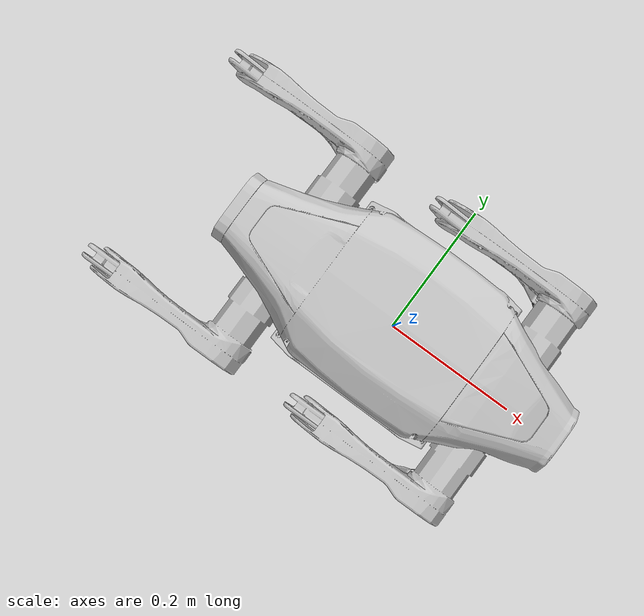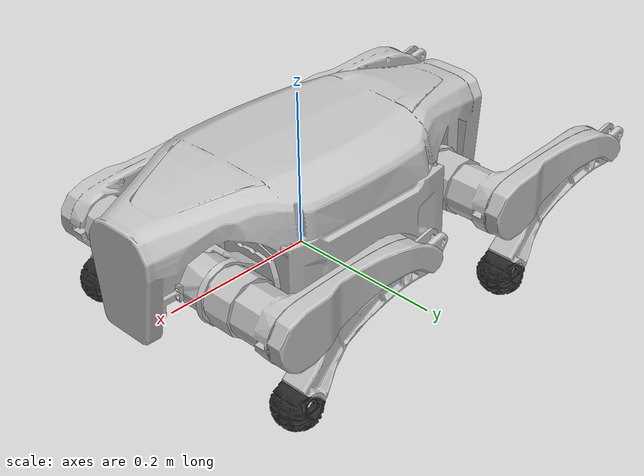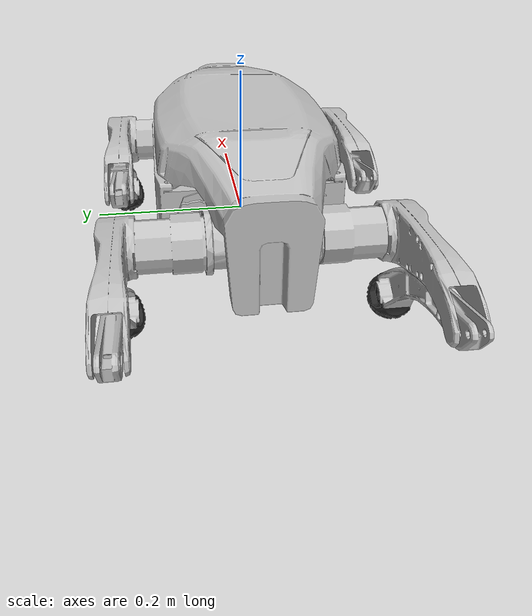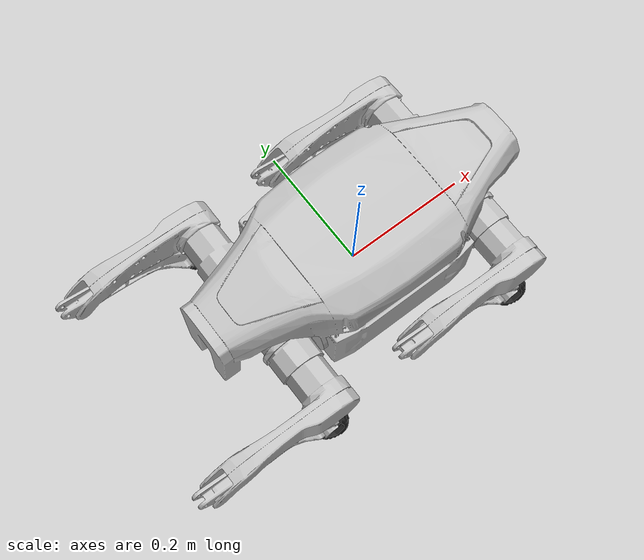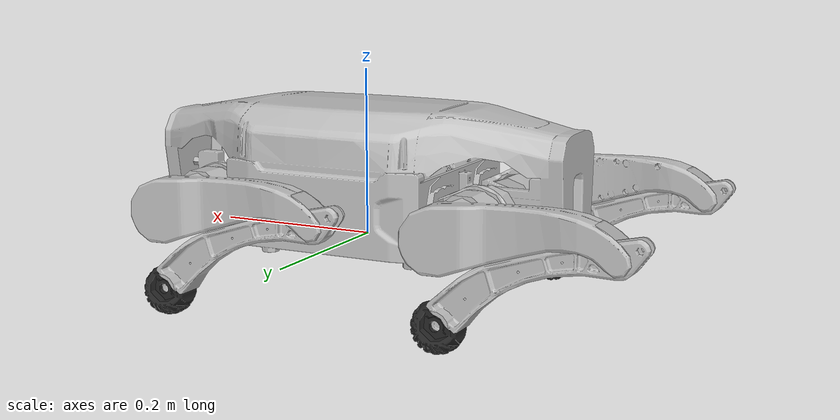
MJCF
<mujoco model='XtellarRobotics/ToGo_LFs_v0p1_prototype'>
    <compiler meshdir='../meshes' />

    <default>
        <default class="vis">
            <geom
                type="mesh" rgba="0.7529411764705882 0.7529411764705882 0.7529411764705882 1.0"
                group="1"
                contype="0" conaffinity="0" density="0"
            />
        </default>
        <default class="vis_rubber">
            <geom
                type="mesh" rgba="0.149 0.149 0.149 1.0"
                group="1"
                contype="0" conaffinity="0" density="0"
            />
        </default>
        <default class="col">
            <geom
                type="mesh" rgba="0.7529411764705882 0.7529411764705882 0.7529411764705882 1.0"
                group="3"
                contype="1" conaffinity="1" density="0"
                solref="0.005 1" solimp="0.95 0.99 0.001 0.5 2"
            />
        </default>
        <default class="col_rubber">
            <geom
                type="mesh" rgba="0.149 0.149 0.149 1.0"
                group="3"
                contype="1" conaffinity="1" density="0"
                solref="0.005 1" solimp="0.95 0.99 0.001 0.5 2"
                condim="6" friction="1.5 0.02 0.001"
            />
        </default>
    </default>

    <asset>
        <mesh name='vis_m0_torso'   file='visual/m0_torso.stl'      scale='0.001 0.001 0.001' />
        <!-- front left leg -->
        <mesh name='vis_mfl1_hipr'  file='visual/mfl1_hipr.stl'     scale='0.001 0.001 0.001' />
        <mesh name='vis_mfl2_hipp'  file='visual/mfl2_hipp.stl'     scale='0.001 0.001 0.001' />
        <mesh name='vis_mfl3_knee'  file='visual/mfl3_knee.stl'     scale='0.001 0.001 0.001' />
        <mesh name='vis_mfl4_foot'  file='visual/mfl4_foot.stl'     scale='0.001 0.001 0.001' />
        <!-- front right leg -->
        <mesh name='vis_mfr1_hipr'  file='visual/mfr1_hipr.stl'     scale='0.001 0.001 0.001' />
        <mesh name='vis_mfr2_hipp'  file='visual/mfr2_hipp.stl'     scale='0.001 0.001 0.001' />
        <mesh name='vis_mfr3_knee'  file='visual/mfr3_knee.stl'     scale='0.001 0.001 0.001' />
        <mesh name='vis_mfr4_foot'  file='visual/mfr4_foot.stl'     scale='0.001 0.001 0.001' />
        <!-- rear left leg -->
        <mesh name='vis_mrl1_hipr'  file='visual/mrl1_hipr.stl'     scale='0.001 0.001 0.001' />
        <mesh name='vis_mrl2_hipp'  file='visual/mrl2_hipp.stl'     scale='0.001 0.001 0.001' />
        <mesh name='vis_mrl3_knee'  file='visual/mrl3_knee.stl'     scale='0.001 0.001 0.001' />
        <mesh name='vis_mrl4_foot'  file='visual/mrl4_foot.stl'     scale='0.001 0.001 0.001' />
        <!-- rear right leg -->
        <mesh name='vis_mrr1_hipr'  file='visual/mrr1_hipr.stl'     scale='0.001 0.001 0.001' />
        <mesh name='vis_mrr2_hipp'  file='visual/mrr2_hipp.stl'     scale='0.001 0.001 0.001' />
        <mesh name='vis_mrr3_knee'  file='visual/mrr3_knee.stl'     scale='0.001 0.001 0.001' />
        <mesh name='vis_mrr4_foot'  file='visual/mrr4_foot.stl'     scale='0.001 0.001 0.001' />

        <mesh name='col_m0_torso'   file='collision/m0_torso.stl'   scale='0.001 0.001 0.001' />
        <!-- front left leg -->
        <mesh name='col_mfl1_hipr'  file='collision/mfl1_hipr.stl'  scale='0.001 0.001 0.001' />
        <mesh name='col_mfl2_hipp'  file='collision/mfl2_hipp.stl'  scale='0.001 0.001 0.001' />
        <mesh name='col_mfl3_knee'  file='collision/mfl3_knee.stl'  scale='0.001 0.001 0.001' />
        <mesh name='col_mfl4_foot'  file='collision/mfl4_foot.stl'  scale='0.001 0.001 0.001' />
        <!-- front right leg -->
        <mesh name='col_mfr1_hipr'  file='collision/mfr1_hipr.stl'  scale='0.001 0.001 0.001' />
        <mesh name='col_mfr2_hipp'  file='collision/mfr2_hipp.stl'  scale='0.001 0.001 0.001' />
        <mesh name='col_mfr3_knee'  file='collision/mfr3_knee.stl'  scale='0.001 0.001 0.001' />
        <mesh name='col_mfr4_foot'  file='collision/mfr4_foot.stl'  scale='0.001 0.001 0.001' />
        <!-- rear left leg -->
        <mesh name='col_mrl1_hipr'  file='collision/mrl1_hipr.stl'  scale='0.001 0.001 0.001' />
        <mesh name='col_mrl2_hipp'  file='collision/mrl2_hipp.stl'  scale='0.001 0.001 0.001' />
        <mesh name='col_mrl3_knee'  file='collision/mrl3_knee.stl'  scale='0.001 0.001 0.001' />
        <mesh name='col_mrl4_foot'  file='collision/mrl4_foot.stl'  scale='0.001 0.001 0.001' />
        <!-- rear right leg -->
        <mesh name='col_mrr1_hipr'  file='collision/mrr1_hipr.stl'  scale='0.001 0.001 0.001' />
        <mesh name='col_mrr2_hipp'  file='collision/mrr2_hipp.stl'  scale='0.001 0.001 0.001' />
        <mesh name='col_mrr3_knee'  file='collision/mrr3_knee.stl'  scale='0.001 0.001 0.001' />
        <mesh name='col_mrr4_foot'  file='collision/mrr4_foot.stl'  scale='0.001 0.001 0.001' />
    </asset>

    <worldbody>
        <body
            name="F_base"
            pos="0.000000000e+00 0.000000000e+00 0.000000000e+00"
            euler="0.000000000e+00 0.000000000e+00 0.000000000e+00"
        >
            <body
                name="L0_torso"
                pos="0.000000000e+00 0.000000000e+00 0.000000000e+00"
                euler="-0.000000000e+00 0.000000000e+00 -0.000000000e+00"
            >
                <inertial
                    pos="4.462000000e-04 3.737000000e-03 5.159860000e-02"
                    mass="7.753978700e+00"
                    fullinertia="4.092640000e-02 9.001370000e-02 1.095425000e-01 -5.256000000e-04 -1.022600000e-03 2.725000000e-04"
                />
                <geom class="vis" mesh="vis_m0_torso" />
                <geom class="col" mesh="col_m0_torso" />

                <site name="imu" pos="8.315000000e-02 0.000000000e+00 7.700000000e-02" euler="-0.000000000e+00 0.000000000e+00 -0.000000000e+00" />

                <!-- front left leg -->
                <body
                    name="Lfl1_hipr"
                    pos="1.260000000e-01 6.250000000e-02 4.500000000e-02"
                    euler="-0.000000000e+00 0.000000000e+00 -0.000000000e+00"
                >
                    <joint
                        name="Jfl1_hipr"
                        type="hinge"
                        axis="1.0 0.0 0.0"
                        range="-2.500000000e+01 2.500000000e+01"
                        armature="0.006180843"
                        damping="0.007"
                        frictionloss="0.194"
                    />
                    <inertial
                        pos="2.417210000e-02 -1.808690000e-02 1.600000000e-06"
                        mass="1.078132000e-01"
                        fullinertia="8.220000000e-05 9.000000000e-05 8.940000000e-05 6.700000000e-06 0.000000000e+00 0.000000000e+00"
                    />
                    <geom class="vis" mesh="vis_mfl1_hipr" />
                    <geom class="col" mesh="col_mfl1_hipr" />

                    <body
                        name="Lfl2_hipp"
                        pos="4.650000000e-02 -3.990000000e-02 0.000000000e+00"
                        euler="-0.000000000e+00 0.000000000e+00 -0.000000000e+00"
                    >
                        <joint
                            name="Jfl2_hipp"
                            type="hinge"
                            axis="0.0 1.0 0.0"
                            range="-1.100000000e+02 1.100000000e+02"
                            armature="0.006180843"
                            damping="0.007"
                            frictionloss="0.194"
                        />
                        <inertial
                            pos="-2.005190000e-02 8.413670000e-02 2.528300000e-03"
                            mass="1.510354600e+00"
                            fullinertia="3.929300000e-03 4.882300000e-03 7.857800000e-03 1.879900000e-03 3.603000000e-04 -2.467000000e-04"
                        />
                        <geom class="vis" mesh="vis_mfl2_hipp" />
                        <geom class="col" mesh="col_mfl2_hipp" />

                        <body
                            name="Lfl3_knee"
                            pos="-2.000000000e-01 1.458000000e-01 0.000000000e+00"
                            euler="-0.000000000e+00 0.000000000e+00 -0.000000000e+00"
                        >
                            <joint
                                name="Jfl3_knee"
                                type="hinge"
                                axis="0.0 1.0 0.0"
                                range="0.000000000e+00 1.000000000e+02"
                                armature="0.006180843"
                                damping="0.007"
                                frictionloss="0.194"
                            />
                            <inertial
                                pos="1.119741000e-01 0.000000000e+00 -3.990870000e-02"
                                mass="3.694785000e-01"
                                fullinertia="5.015000000e-04 2.553300000e-03 2.082600000e-03 0.000000000e+00 8.986000000e-04 0.000000000e+00"
                            />
                            <geom class="vis" mesh="vis_mfl3_knee" />
                            <geom class="col" mesh="col_mfl3_knee" />

                            <body
                                name="Lfl4_foot"
                                pos="1.942564000e-01 0.000000000e+00 -8.890640000e-02"
                                euler="0.000000000e+00 -3.799999910e+01 0.000000000e+00"
                            >
                                <inertial
                                    pos="5.000000000e-07 -8.500000000e-06 -8.971600000e-03"
                                    mass="8.600240000e-02"
                                    fullinertia="2.820000000e-05 2.870000000e-05 3.350000000e-05 0.000000000e+00 0.000000000e+00 0.000000000e+00"
                                />
                                <geom class="vis_rubber" mesh="vis_mfl4_foot" />
                                <geom class="col_rubber" mesh="col_mfl4_foot" />
                            </body>
                        </body>
                    </body>
                </body>

                <!-- front right leg -->
                <body
                    name="Lfr1_hipr"
                    pos="1.260000000e-01 -6.250000000e-02 4.500000000e-02"
                    euler="-0.000000000e+00 0.000000000e+00 -0.000000000e+00"
                >
                    <joint
                        name="Jfr1_hipr"
                        type="hinge"
                        axis="1.0 0.0 0.0"
                        range="-2.500000000e+01 2.500000000e+01"
                        armature="0.006180843"
                        damping="0.007"
                        frictionloss="0.194"
                    />
                    <inertial
                        pos="2.417210000e-02 1.808690000e-02 -1.600000000e-06"
                        mass="1.078132000e-01"
                        fullinertia="8.220000000e-05 9.000000000e-05 8.940000000e-05 -6.700000000e-06 0.000000000e+00 0.000000000e+00"
                    />
                    <geom class="vis" mesh="vis_mfr1_hipr" />
                    <geom class="col" mesh="col_mfr1_hipr" />

                    <body
                        name="Lfr2_hipp"
                        pos="4.650000000e-02 3.990000000e-02 0.000000000e+00"
                        euler="-0.000000000e+00 0.000000000e+00 -0.000000000e+00"
                    >
                        <joint
                            name="Jfr2_hipp"
                            type="hinge"
                            axis="0.0 -1.0 0.0"
                            range="-1.100000000e+02 1.100000000e+02"
                            armature="0.006180843"
                            damping="0.007"
                            frictionloss="0.194"
                        />
                        <inertial
                            pos="-2.005200000e-02 -8.413660000e-02 2.646100000e-03"
                            mass="1.510350900e+00"
                            fullinertia="3.928400000e-03 4.881300000e-03 7.857700000e-03 -1.879900000e-03 3.634000000e-04 2.345000000e-04"
                        />
                        <geom class="vis" mesh="vis_mfr2_hipp" />
                        <geom class="col" mesh="col_mfr2_hipp" />

                        <body
                            name="Lfr3_knee"
                            pos="-2.000000000e-01 -1.458000000e-01 0.000000000e+00"
                            euler="-0.000000000e+00 0.000000000e+00 -0.000000000e+00"
                        >
                            <joint
                                name="Jfr3_knee"
                                type="hinge"
                                axis="0.0 -1.0 0.0"
                                range="-1.000000000e+02 0.000000000e+00"
                                armature="0.006180843"
                                damping="0.007"
                                frictionloss="0.194"
                            />
                            <inertial
                                pos="1.119741000e-01 0.000000000e+00 -3.990870000e-02"
                                mass="3.694785000e-01"
                                fullinertia="5.015000000e-04 2.553300000e-03 2.082600000e-03 0.000000000e+00 8.986000000e-04 0.000000000e+00"
                            />
                            <geom class="vis" mesh="vis_mfr3_knee" />
                            <geom class="col" mesh="col_mfr3_knee" />

                            <body
                                name="Lfr4_foot"
                                pos="1.942564000e-01 0.000000000e+00 -8.890640000e-02"
                                euler="0.000000000e+00 -3.799999910e+01 0.000000000e+00"
                            >
                                <inertial
                                    pos="5.000000000e-07 -8.500000000e-06 -8.971600000e-03"
                                    mass="8.600240000e-02"
                                    fullinertia="2.820000000e-05 2.870000000e-05 3.350000000e-05 0.000000000e+00 0.000000000e+00 0.000000000e+00"
                                />
                                <geom class="vis_rubber" mesh="vis_mfr4_foot" />
                                <geom class="col_rubber" mesh="col_mfr4_foot" />
                            </body>
                        </body>
                    </body>
                </body>

                <!-- rear left leg -->
                <body
                    name="Lrl1_hipr"
                    pos="-1.268000000e-01 6.250000000e-02 4.500000000e-02"
                    euler="-0.000000000e+00 0.000000000e+00 -0.000000000e+00"
                >
                    <joint
                        name="Jrl1_hipr"
                        type="hinge"
                        axis="-1.0 0.0 0.0"
                        range="-2.500000000e+01 2.500000000e+01"
                        armature="0.006180843"
                        damping="0.007"
                        frictionloss="0.194"
                    />
                    <inertial
                        pos="-2.417210000e-02 -1.808690000e-02 -1.600000000e-06"
                        mass="1.078132000e-01"
                        fullinertia="8.220000000e-05 9.000000000e-05 8.940000000e-05 -6.700000000e-06 0.000000000e+00 0.000000000e+00"
                    />
                    <geom class="vis" mesh="vis_mrl1_hipr" />
                    <geom class="col" mesh="col_mrl1_hipr" />

                    <body
                        name="Lrl2_hipp"
                        pos="-4.650000000e-02 -3.990000000e-02 0.000000000e+00"
                        euler="-0.000000000e+00 0.000000000e+00 -0.000000000e+00"
                    >
                        <joint
                            name="Jrl2_hipp"
                            type="hinge"
                            axis="0.0 1.0 0.0"
                            range="-1.100000000e+02 1.100000000e+02"
                            armature="0.006180843"
                            damping="0.007"
                            frictionloss="0.194"
                        />
                        <inertial
                            pos="-2.005190000e-02 8.413670000e-02 2.528300000e-03"
                            mass="1.510354600e+00"
                            fullinertia="3.929300000e-03 4.882300000e-03 7.857800000e-03 1.879900000e-03 3.603000000e-04 -2.467000000e-04"
                        />
                        <geom class="vis" mesh="vis_mrl2_hipp" />
                        <geom class="col" mesh="col_mrl2_hipp" />

                        <body
                            name="Lrl3_knee"
                            pos="-2.000000000e-01 1.458000000e-01 0.000000000e+00"
                            euler="-0.000000000e+00 0.000000000e+00 -0.000000000e+00"
                        >
                            <joint
                                name="Jrl3_knee"
                                type="hinge"
                                axis="0.0 1.0 0.0"
                                range="0.000000000e+00 1.000000000e+02"
                                armature="0.006180843"
                                damping="0.007"
                                frictionloss="0.194"
                            />
                            <inertial
                                pos="1.119741000e-01 0.000000000e+00 -3.990870000e-02"
                                mass="3.694785000e-01"
                                fullinertia="5.015000000e-04 2.553300000e-03 2.082600000e-03 0.000000000e+00 8.986000000e-04 0.000000000e+00"
                            />
                            <geom class="vis" mesh="vis_mrl3_knee" />
                            <geom class="col" mesh="col_mrl3_knee" />

                            <body
                                name="Lrl4_foot"
                                pos="1.942564000e-01 0.000000000e+00 -8.890640000e-02"
                                euler="0.000000000e+00 -3.799999910e+01 0.000000000e+00"
                            >
                                <inertial
                                    pos="5.000000000e-07 -8.500000000e-06 -8.971600000e-03"
                                    mass="8.600240000e-02"
                                    fullinertia="2.820000000e-05 2.870000000e-05 3.350000000e-05 0.000000000e+00 0.000000000e+00 0.000000000e+00"
                                />
                                <geom class="vis_rubber" mesh="vis_mrl4_foot" />
                                <geom class="col_rubber" mesh="col_mrl4_foot" />
                            </body>
                        </body>
                    </body>
                </body>

                <!-- rear right leg -->
                <body
                    name="Lrr1_hipr"
                    pos="-1.268000000e-01 -6.250000000e-02 4.500000000e-02"
                    euler="-0.000000000e+00 0.000000000e+00 -0.000000000e+00"
                >
                    <joint
                        name="Jrr1_hipr"
                        type="hinge"
                        axis="-1.0 0.0 0.0"
                        range="-2.500000000e+01 2.500000000e+01"
                        armature="0.006180843"
                        damping="0.007"
                        frictionloss="0.194"
                    />
                    <inertial
                        pos="-2.417210000e-02 1.808690000e-02 1.600000000e-06"
                        mass="1.078132000e-01"
                        fullinertia="8.220000000e-05 9.000000000e-05 8.940000000e-05 6.700000000e-06 0.000000000e+00 0.000000000e+00"
                    />
                    <geom class="vis" mesh="vis_mrr1_hipr" />
                    <geom class="col" mesh="col_mrr1_hipr" />

                    <body
                        name="Lrr2_hipp"
                        pos="-4.650000000e-02 3.990000000e-02 0.000000000e+00"
                        euler="-0.000000000e+00 0.000000000e+00 -0.000000000e+00"
                    >
                        <joint
                            name="Jrr2_hipp"
                            type="hinge"
                            axis="0.0 -1.0 0.0"
                            range="-1.100000000e+02 1.100000000e+02"
                            armature="0.006180843"
                            damping="0.007"
                            frictionloss="0.194"
                        />
                        <inertial
                            pos="-2.005200000e-02 -8.413660000e-02 2.646100000e-03"
                            mass="1.510350900e+00"
                            fullinertia="3.928400000e-03 4.881300000e-03 7.857700000e-03 -1.879900000e-03 3.634000000e-04 2.345000000e-04"
                        />
                        <geom class="vis" mesh="vis_mrr2_hipp" />
                        <geom class="col" mesh="col_mrr2_hipp" />

                        <body
                            name="Lrr3_knee"
                            pos="-2.000000000e-01 -1.458000000e-01 0.000000000e+00"
                            euler="-0.000000000e+00 0.000000000e+00 -0.000000000e+00"
                        >
                            <joint
                                name="Jrr3_knee"
                                type="hinge"
                                axis="0.0 -1.0 0.0"
                                range="-1.000000000e+02 0.000000000e+00"
                                armature="0.006180843"
                                damping="0.007"
                                frictionloss="0.194"
                            />
                            <inertial
                                pos="1.119741000e-01 0.000000000e+00 -3.990870000e-02"
                                mass="3.694785000e-01"
                                fullinertia="5.015000000e-04 2.553300000e-03 2.082600000e-03 0.000000000e+00 8.986000000e-04 0.000000000e+00"
                            />
                            <geom class="vis" mesh="vis_mrr3_knee" />
                            <geom class="col" mesh="col_mrr3_knee" />

                            <body
                                name="Lrr4_foot"
                                pos="1.942564000e-01 0.000000000e+00 -8.890640000e-02"
                                euler="0.000000000e+00 -3.799999910e+01 0.000000000e+00"
                            >
                                <inertial
                                    pos="5.000000000e-07 -8.500000000e-06 -8.971600000e-03"
                                    mass="8.600240000e-02"
                                    fullinertia="2.820000000e-05 2.870000000e-05 3.350000000e-05 0.000000000e+00 0.000000000e+00 0.000000000e+00"
                                />
                                <geom class="vis_rubber" mesh="vis_mrr4_foot" />
                                <geom class="col_rubber" mesh="col_mrr4_foot" />
                            </body>
                        </body>
                    </body>
                </body>

            </body>
        </body>
    </worldbody>

    <contact>
        <!-- front left leg -->
        <exclude body1="L0_torso"   body2="Lfl1_hipr" />
        <exclude body1="L0_torso"   body2="Lfl2_hipp" />
        <exclude body1="Lfl1_hipr"  body2="Lfl2_hipp" />
        <exclude body1="Lfl2_hipp"  body2="Lfl3_knee" />
        <!-- front right leg -->
        <exclude body1="L0_torso"   body2="Lfr1_hipr" />
        <exclude body1="L0_torso"   body2="Lfr2_hipp" />
        <exclude body1="Lfr1_hipr"  body2="Lfr2_hipp" />
        <exclude body1="Lfr2_hipp"  body2="Lfr3_knee" />
        <!-- rear left leg -->
        <exclude body1="L0_torso"   body2="Lrl1_hipr" />
        <exclude body1="L0_torso"   body2="Lrl2_hipp" />
        <exclude body1="Lrl1_hipr"  body2="Lrl2_hipp" />
        <exclude body1="Lrl2_hipp"  body2="Lrl3_knee" />
        <!-- rear right leg -->
        <exclude body1="L0_torso"   body2="Lrr1_hipr" />
        <exclude body1="L0_torso"   body2="Lrr2_hipp" />
        <exclude body1="Lrr1_hipr"  body2="Lrr2_hipp" />
        <exclude body1="Lrr2_hipp"  body2="Lrr3_knee" />
    </contact>

    <actuator>
        <!-- front left leg -->
        <motor
            name="Rfl1_hipr" joint="Jfl1_hipr" gear="1"
            ctrlrange="-4.800000000e+01 4.800000000e+01"
            forcerange="-4.800000000e+01 4.800000000e+01"
        />
        <motor
            name="Rfl2_hipp" joint="Jfl2_hipp" gear="1"
            ctrlrange="-4.800000000e+01 4.800000000e+01"
            forcerange="-4.800000000e+01 4.800000000e+01"
        />
        <motor
            name="Rfl3_knee" joint="Jfl3_knee" gear="1"
            ctrlrange="-4.800000000e+01 4.800000000e+01"
            forcerange="-4.800000000e+01 4.800000000e+01"
        />
        <!-- front right leg -->
        <motor
            name="Rfr1_hipr" joint="Jfr1_hipr" gear="1"
            ctrlrange="-4.800000000e+01 4.800000000e+01"
            forcerange="-4.800000000e+01 4.800000000e+01"
        />
        <motor
            name="Rfr2_hipp" joint="Jfr2_hipp" gear="1"
            ctrlrange="-4.800000000e+01 4.800000000e+01"
            forcerange="-4.800000000e+01 4.800000000e+01"
        />
        <motor
            name="Rfr3_knee" joint="Jfr3_knee" gear="1"
            ctrlrange="-4.800000000e+01 4.800000000e+01"
            forcerange="-4.800000000e+01 4.800000000e+01"
        />
        <!-- rear left leg -->
        <motor
            name="Rrl1_hipr" joint="Jrl1_hipr" gear="1"
            ctrlrange="-4.800000000e+01 4.800000000e+01"
            forcerange="-4.800000000e+01 4.800000000e+01"
        />
        <motor
            name="Rrl2_hipp" joint="Jrl2_hipp" gear="1"
            ctrlrange="-4.800000000e+01 4.800000000e+01"
            forcerange="-4.800000000e+01 4.800000000e+01"
        />
        <motor
            name="Rrl3_knee" joint="Jrl3_knee" gear="1"
            ctrlrange="-4.800000000e+01 4.800000000e+01"
            forcerange="-4.800000000e+01 4.800000000e+01"
        />
        <!-- rear right leg -->
        <motor
            name="Rrr1_hipr" joint="Jrr1_hipr" gear="1"
            ctrlrange="-4.800000000e+01 4.800000000e+01"
            forcerange="-4.800000000e+01 4.800000000e+01"
        />
        <motor
            name="Rrr2_hipp" joint="Jrr2_hipp" gear="1"
            ctrlrange="-4.800000000e+01 4.800000000e+01"
            forcerange="-4.800000000e+01 4.800000000e+01"
        />
        <motor
            name="Rrr3_knee" joint="Jrr3_knee" gear="1"
            ctrlrange="-4.800000000e+01 4.800000000e+01"
            forcerange="-4.800000000e+01 4.800000000e+01"
        />
    </actuator>

    <sensor>
        <!-- joint position `q_J` -->

        <!--- front left leg -->
        <jointpos name="q_Jfl1_hipr" joint="Jfl1_hipr" noise='0.000' />
        <jointpos name="q_Jfl2_hipp" joint="Jfl2_hipp" noise='0.000' />
        <jointpos name="q_Jfl3_knee" joint="Jfl3_knee" noise='0.000' />
        <!--- front right leg -->
        <jointpos name="q_Jfr1_hipr" joint="Jfr1_hipr" noise='0.000' />
        <jointpos name="q_Jfr2_hipp" joint="Jfr2_hipp" noise='0.000' />
        <jointpos name="q_Jfr3_knee" joint="Jfr3_knee" noise='0.000' />
        <!--- rear left leg -->
        <jointpos name="q_Jrl1_hipr" joint="Jrl1_hipr" noise='0.000' />
        <jointpos name="q_Jrl2_hipp" joint="Jrl2_hipp" noise='0.000' />
        <jointpos name="q_Jrl3_knee" joint="Jrl3_knee" noise='0.000' />
        <!--- rear right leg -->
        <jointpos name="q_Jrr1_hipr" joint="Jrr1_hipr" noise='0.000' />
        <jointpos name="q_Jrr2_hipp" joint="Jrr2_hipp" noise='0.000' />
        <jointpos name="q_Jrr3_knee" joint="Jrr3_knee" noise='0.000' />

        <!-- joint velocity `dq_J` -->

        <!--- front left leg -->
        <jointvel name="dq_Jfl1_hipr" joint="Jfl1_hipr" noise='0.000' />
        <jointvel name="dq_Jfl2_hipp" joint="Jfl2_hipp" noise='0.000' />
        <jointvel name="dq_Jfl3_knee" joint="Jfl3_knee" noise='0.000' />
        <!--- front right leg -->
        <jointvel name="dq_Jfr1_hipr" joint="Jfr1_hipr" noise='0.000' />
        <jointvel name="dq_Jfr2_hipp" joint="Jfr2_hipp" noise='0.000' />
        <jointvel name="dq_Jfr3_knee" joint="Jfr3_knee" noise='0.000' />
        <!--- rear left leg -->
        <jointvel name="dq_Jrl1_hipr" joint="Jrl1_hipr" noise='0.000' />
        <jointvel name="dq_Jrl2_hipp" joint="Jrl2_hipp" noise='0.000' />
        <jointvel name="dq_Jrl3_knee" joint="Jrl3_knee" noise='0.000' />
        <!--- rear right leg -->
        <jointvel name="dq_Jrr1_hipr" joint="Jrr1_hipr" noise='0.000' />
        <jointvel name="dq_Jrr2_hipp" joint="Jrr2_hipp" noise='0.000' />
        <jointvel name="dq_Jrr3_knee" joint="Jrr3_knee" noise='0.000' />

        <!-- joint torque `tau_J` -->

        <!--- front left leg -->
        <jointactuatorfrc name="tau_Jfl1_hipr" joint="Jfl1_hipr" noise='0.000' />
        <jointactuatorfrc name="tau_Jfl2_hipp" joint="Jfl2_hipp" noise='0.000' />
        <jointactuatorfrc name="tau_Jfl3_knee" joint="Jfl3_knee" noise='0.000' />
        <!--- front right leg -->
        <jointactuatorfrc name="tau_Jfr1_hipr" joint="Jfr1_hipr" noise='0.000' />
        <jointactuatorfrc name="tau_Jfr2_hipp" joint="Jfr2_hipp" noise='0.000' />
        <jointactuatorfrc name="tau_Jfr3_knee" joint="Jfr3_knee" noise='0.000' />
        <!--- rear left leg -->
        <jointactuatorfrc name="tau_Jrl1_hipr" joint="Jrl1_hipr" noise='0.000' />
        <jointactuatorfrc name="tau_Jrl2_hipp" joint="Jrl2_hipp" noise='0.000' />
        <jointactuatorfrc name="tau_Jrl3_knee" joint="Jrl3_knee" noise='0.000' />
        <!--- rear right leg -->
        <jointactuatorfrc name="tau_Jrr1_hipr" joint="Jrr1_hipr" noise='0.000' />
        <jointactuatorfrc name="tau_Jrr2_hipp" joint="Jrr2_hipp" noise='0.000' />
        <jointactuatorfrc name="tau_Jrr3_knee" joint="Jrr3_knee" noise='0.000' />

        <!-- IMU -->
        <gyro           name="imu_gyro" site="imu" noise="0.000" />
        <accelerometer  name="imu_accl" site="imu" noise="0.000" />
        <framequat      name="imu_quat" objtype="site" objname="imu" noise="0.000" />
        <framepos       name="gt_pos"   objtype="site" objname="imu" />
        <framelinvel    name="gt_vel"   objtype="site" objname="imu" />
    </sensor>
</mujoco>
